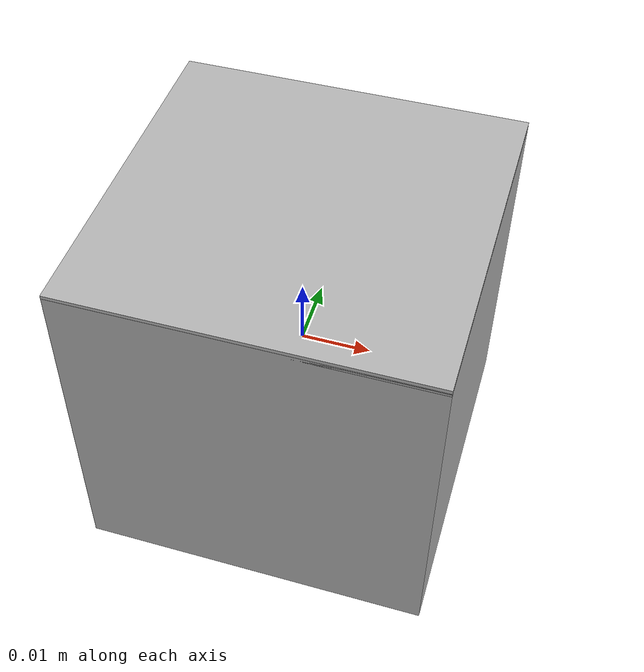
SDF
<?xml version="1.0" ?><sdf version="1.6">

<model name="Box1">

  <static>false</static>

    <link name="Aruco_box">

    <!-- Box -->
      <visual name="Box">
        <pose>0.0 0 0 0 0 0</pose>
        <geometry>
          <box>
            <size>0.05 0.05 0.05</size>
          </box>
        </geometry>
        <material>
          <ambient>0.7 0.7 0.7 1</ambient>
          <diffuse>0.7 0.7 0.7 1</diffuse>
          <specular>0.1 0.1 0.1 1</specular>
        </material>
      </visual>

      <collision name="Box_collision">
        <pose>0.0 0 0 0 0 0</pose>
        <geometry>
          <box>
            <size>0.05 0.05 0.05</size>
          </box>
        </geometry>

  <surface>
    <friction>
      <ode>
        <mu>5.0</mu>
        <mu2>5.0</mu2>
      </ode>
    </friction>
  </surface>

      </collision>

      <!-- Top aruco face -->
     <visual name="Top">
        <pose>-0.025 0 0.025 0 1.57 0</pose>
        <geometry>
          <mesh>
            <uri>meshes/Box1.dae</uri>
            <scale>0.1 0.1 0.1</scale>
          </mesh>
        </geometry>
      </visual>

  <inertial>
    <mass value="0.5"/>
    <inertia ixx="0.001633333" ixy="0.0" ixz="0.0" iyy="0.001633333" iyz="0.0" izz="0.001633333"/>
  </inertial>

  </link>
  </model>

</sdf>
